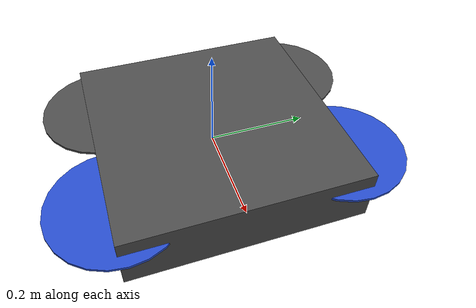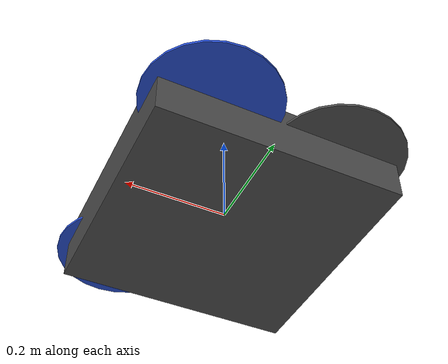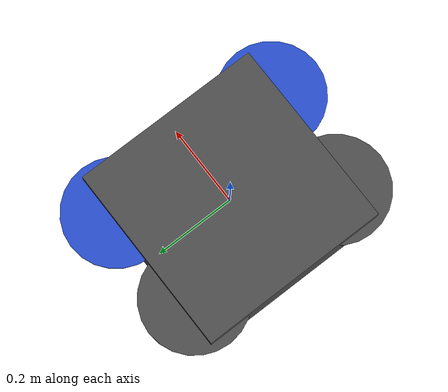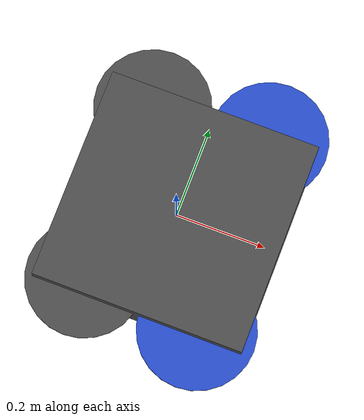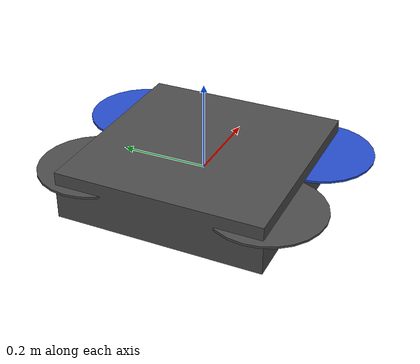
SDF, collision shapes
<sdf version='1.6'>
  <model name='iris'>
    <link name='base_link'>
      <pose frame=''>0 0 0 0 -0 0</pose>
      <inertial>
        <pose frame=''>0 0 0 0 -0 0</pose>
        <mass>1.5</mass>
        <inertia>
          <ixx>0.029125</ixx>
          <ixy>0</ixy>
          <ixz>0</ixz>
          <iyy>0.029125</iyy>
          <iyz>0</iyz>
          <izz>0.055225</izz>
        </inertia>
      </inertial>
      <collision name='base_link_inertia_collision'>
        <pose frame=''>0 0 0 0 -0 0</pose>
        <geometry>
          <box>
            <size>0.47 0.47 0.11</size>
          </box>
        </geometry>
        <surface>
          <contact>
            <ode>
              <min_depth>0.001</min_depth>
              <max_vel>0</max_vel>
            </ode>
          </contact>
          <friction>
            <ode/>
          </friction>
        </surface>
      </collision>
      <visual name='base_link_inertia_visual'>
        <pose frame=''>0 0 0 0 -0 0</pose>
        <geometry>
          <mesh>
            <scale>1 1 1</scale>
            <uri>model://rotors_description/meshes/iris.stl</uri>
          </mesh>
        </geometry>
        <material>
          <script>
            <name>Gazebo/DarkGrey</name>
            <uri>file://media/materials/scripts/gazebo.material</uri>
          </script>
        </material>
      </visual>
      <gravity>1</gravity>
      <velocity_decay/>
    </link>
    <link name='/imu_link'>
      <pose frame=''>0 0 0 0 -0 0</pose>
      <inertial>
        <pose frame=''>0 0 0 0 -0 0</pose>
        <mass>0.015</mass>
        <inertia>
          <ixx>1e-05</ixx>
          <ixy>0</ixy>
          <ixz>0</ixz>
          <iyy>1e-05</iyy>
          <iyz>0</iyz>
          <izz>1e-05</izz>
        </inertia>
      </inertial>
    </link>
    <joint name='/imu_joint' type='revolute'>
      <child>/imu_link</child>
      <parent>base_link</parent>
      <axis>
        <xyz>1 0 0</xyz>
        <limit>
          <lower>0</lower>
          <upper>0</upper>
          <effort>0</effort>
          <velocity>0</velocity>
        </limit>
        <dynamics>
          <spring_reference>0</spring_reference>
          <spring_stiffness>0</spring_stiffness>
        </dynamics>
        <use_parent_model_frame>1</use_parent_model_frame>
      </axis>
    </joint>
    <link name='rotor_0'>
      <pose frame=''>0.13 -0.22 0.023 0 -0 0</pose>
      <inertial>
        <pose frame=''>0 0 0 0 -0 0</pose>
        <mass>0.005</mass>
        <inertia>
          <ixx>9.75e-07</ixx>
          <ixy>0</ixy>
          <ixz>0</ixz>
          <iyy>0.000273104</iyy>
          <iyz>0</iyz>
          <izz>0.000274004</izz>
        </inertia>
      </inertial>
      <collision name='rotor_0_collision'>
        <pose frame=''>0 0 0 0 -0 0</pose>
        <geometry>
          <cylinder>
            <length>0.005</length>
            <radius>0.128</radius>
          </cylinder>
        </geometry>
        <surface>
          <contact>
            <ode/>
          </contact>
          <friction>
            <ode/>
          </friction>
        </surface>
      </collision>
      <visual name='rotor_0_visual'>
        <pose frame=''>0 0 0 0 -0 0</pose>
        <geometry>
          <mesh>
            <scale>1 1 1</scale>
            <uri>model://rotors_description/meshes/iris_prop_ccw.dae</uri>
          </mesh>
        </geometry>
        <material>
          <script>
            <name>Gazebo/Blue</name>
            <uri>file://media/materials/scripts/gazebo.material</uri>
          </script>
        </material>
      </visual>
      <gravity>1</gravity>
      <velocity_decay/>
    </link>
    <joint name='rotor_0_joint' type='revolute'>
      <child>rotor_0</child>
      <parent>base_link</parent>
      <axis>
        <xyz>0 0 1</xyz>
        <limit>
          <lower>-1e+16</lower>
          <upper>1e+16</upper>
        </limit>
        <dynamics>
          <spring_reference>0</spring_reference>
          <spring_stiffness>0</spring_stiffness>
        </dynamics>
        <use_parent_model_frame>1</use_parent_model_frame>
      </axis>
    </joint>
    <link name='rotor_1'>
      <pose frame=''>-0.13 0.2 0.023 0 -0 0</pose>
      <inertial>
        <pose frame=''>0 0 0 0 -0 0</pose>
        <mass>0.005</mass>
        <inertia>
          <ixx>9.75e-07</ixx>
          <ixy>0</ixy>
          <ixz>0</ixz>
          <iyy>0.000273104</iyy>
          <iyz>0</iyz>
          <izz>0.000274004</izz>
        </inertia>
      </inertial>
      <collision name='rotor_1_collision'>
        <pose frame=''>0 0 0 0 -0 0</pose>
        <geometry>
          <cylinder>
            <length>0.005</length>
            <radius>0.128</radius>
          </cylinder>
        </geometry>
        <surface>
          <contact>
            <ode/>
          </contact>
          <friction>
            <ode/>
          </friction>
        </surface>
      </collision>
      <visual name='rotor_1_visual'>
        <pose frame=''>0 0 0 0 -0 0</pose>
        <geometry>
          <mesh>
            <scale>1 1 1</scale>
            <uri>model://rotors_description/meshes/iris_prop_ccw.dae</uri>
          </mesh>
        </geometry>
        <material>
          <script>
            <name>Gazebo/DarkGrey</name>
            <uri>file://media/materials/scripts/gazebo.material</uri>
          </script>
        </material>
      </visual>
      <gravity>1</gravity>
      <velocity_decay/>
    </link>
    <joint name='rotor_1_joint' type='revolute'>
      <child>rotor_1</child>
      <parent>base_link</parent>
      <axis>
        <xyz>0 0 1</xyz>
        <limit>
          <lower>-1e+16</lower>
          <upper>1e+16</upper>
        </limit>
        <dynamics>
          <spring_reference>0</spring_reference>
          <spring_stiffness>0</spring_stiffness>
        </dynamics>
        <use_parent_model_frame>1</use_parent_model_frame>
      </axis>
    </joint>
    <link name='rotor_2'>
      <pose frame=''>0.13 0.22 0.023 0 -0 0</pose>
      <inertial>
        <pose frame=''>0 0 0 0 -0 0</pose>
        <mass>0.005</mass>
        <inertia>
          <ixx>9.75e-07</ixx>
          <ixy>0</ixy>
          <ixz>0</ixz>
          <iyy>0.000273104</iyy>
          <iyz>0</iyz>
          <izz>0.000274004</izz>
        </inertia>
      </inertial>
      <collision name='rotor_2_collision'>
        <pose frame=''>0 0 0 0 -0 0</pose>
        <geometry>
          <cylinder>
            <length>0.005</length>
            <radius>0.128</radius>
          </cylinder>
        </geometry>
        <surface>
          <contact>
            <ode/>
          </contact>
          <friction>
            <ode/>
          </friction>
        </surface>
      </collision>
      <visual name='rotor_2_visual'>
        <pose frame=''>0 0 0 0 -0 0</pose>
        <geometry>
          <mesh>
            <scale>1 1 1</scale>
            <uri>model://rotors_description/meshes/iris_prop_cw.dae</uri>
          </mesh>
        </geometry>
        <material>
          <script>
            <name>Gazebo/Blue</name>
            <uri>file://media/materials/scripts/gazebo.material</uri>
          </script>
        </material>
      </visual>
      <gravity>1</gravity>
      <velocity_decay/>
    </link>
    <joint name='rotor_2_joint' type='revolute'>
      <child>rotor_2</child>
      <parent>base_link</parent>
      <axis>
        <xyz>0 0 1</xyz>
        <limit>
          <lower>-1e+16</lower>
          <upper>1e+16</upper>
        </limit>
        <dynamics>
          <spring_reference>0</spring_reference>
          <spring_stiffness>0</spring_stiffness>
        </dynamics>
        <use_parent_model_frame>1</use_parent_model_frame>
      </axis>
    </joint>
    <link name='rotor_3'>
      <pose frame=''>-0.13 -0.2 0.023 0 -0 0</pose>
      <inertial>
        <pose frame=''>0 0 0 0 -0 0</pose>
        <mass>0.005</mass>
        <inertia>
          <ixx>9.75e-07</ixx>
          <ixy>0</ixy>
          <ixz>0</ixz>
          <iyy>0.000273104</iyy>
          <iyz>0</iyz>
          <izz>0.000274004</izz>
        </inertia>
      </inertial>
      <collision name='rotor_3_collision'>
        <pose frame=''>0 0 0 0 -0 0</pose>
        <geometry>
          <cylinder>
            <length>0.005</length>
            <radius>0.128</radius>
          </cylinder>
        </geometry>
        <surface>
          <contact>
            <ode/>
          </contact>
          <friction>
            <ode/>
          </friction>
        </surface>
      </collision>
      <visual name='rotor_3_visual'>
        <pose frame=''>0 0 0 0 -0 0</pose>
        <geometry>
          <mesh>
            <scale>1 1 1</scale>
            <uri>model://rotors_description/meshes/iris_prop_cw.dae</uri>
          </mesh>
        </geometry>
        <material>
          <script>
            <name>Gazebo/DarkGrey</name>
            <uri>file://media/materials/scripts/gazebo.material</uri>
          </script>
        </material>
      </visual>
      <gravity>1</gravity>
      <velocity_decay/>
    </link>
    <joint name='rotor_3_joint' type='revolute'>
      <child>rotor_3</child>
      <parent>base_link</parent>
      <axis>
        <xyz>0 0 1</xyz>
        <limit>
          <lower>-1e+16</lower>
          <upper>1e+16</upper>
        </limit>
        <dynamics>
          <spring_reference>0</spring_reference>
          <spring_stiffness>0</spring_stiffness>
        </dynamics>
        <use_parent_model_frame>1</use_parent_model_frame>
      </axis>
    </joint>
    <plugin name='rosbag' filename='libgazebo_multirotor_base_plugin.so'>
      <robotNamespace/>
      <linkName>base_link</linkName>
      <rotorVelocitySlowdownSim>10</rotorVelocitySlowdownSim>
    </plugin>
    <plugin name='front_right_motor_model' filename='libgazebo_motor_model.so'>
      <robotNamespace/>
      <jointName>rotor_0_joint</jointName>
      <linkName>rotor_0</linkName>
      <turningDirection>ccw</turningDirection>
      <timeConstantUp>0.0125</timeConstantUp>
      <timeConstantDown>0.025</timeConstantDown>
      <maxRotVelocity>1100</maxRotVelocity>
      <motorConstant>8.54858e-06</motorConstant>
      <momentConstant>0.06</momentConstant>
      <commandSubTopic>/gazebo/command/motor_speed</commandSubTopic>
      <motorNumber>0</motorNumber>
      <rotorDragCoefficient>0.000806428</rotorDragCoefficient>
      <rollingMomentCoefficient>1e-06</rollingMomentCoefficient>
      <motorSpeedPubTopic>/motor_speed/0</motorSpeedPubTopic>
      <rotorVelocitySlowdownSim>10</rotorVelocitySlowdownSim>
    </plugin>
    <plugin name='back_left_motor_model' filename='libgazebo_motor_model.so'>
      <robotNamespace/>
      <jointName>rotor_1_joint</jointName>
      <linkName>rotor_1</linkName>
      <turningDirection>ccw</turningDirection>
      <timeConstantUp>0.0125</timeConstantUp>
      <timeConstantDown>0.025</timeConstantDown>
      <maxRotVelocity>1100</maxRotVelocity>
      <motorConstant>8.54858e-06</motorConstant>
      <momentConstant>0.06</momentConstant>
      <commandSubTopic>/gazebo/command/motor_speed</commandSubTopic>
      <motorNumber>1</motorNumber>
      <rotorDragCoefficient>0.000806428</rotorDragCoefficient>
      <rollingMomentCoefficient>1e-06</rollingMomentCoefficient>
      <motorSpeedPubTopic>/motor_speed/1</motorSpeedPubTopic>
      <rotorVelocitySlowdownSim>10</rotorVelocitySlowdownSim>
    </plugin>
    <plugin name='front_left_motor_model' filename='libgazebo_motor_model.so'>
      <robotNamespace/>
      <jointName>rotor_2_joint</jointName>
      <linkName>rotor_2</linkName>
      <turningDirection>cw</turningDirection>
      <timeConstantUp>0.0125</timeConstantUp>
      <timeConstantDown>0.025</timeConstantDown>
      <maxRotVelocity>1100</maxRotVelocity>
      <motorConstant>8.54858e-06</motorConstant>
      <momentConstant>0.06</momentConstant>
      <commandSubTopic>/gazebo/command/motor_speed</commandSubTopic>
      <motorNumber>2</motorNumber>
      <rotorDragCoefficient>0.000806428</rotorDragCoefficient>
      <rollingMomentCoefficient>1e-06</rollingMomentCoefficient>
      <motorSpeedPubTopic>/motor_speed/2</motorSpeedPubTopic>
      <rotorVelocitySlowdownSim>10</rotorVelocitySlowdownSim>
    </plugin>
    <plugin name='back_right_motor_model' filename='libgazebo_motor_model.so'>
      <robotNamespace/>
      <jointName>rotor_3_joint</jointName>
      <linkName>rotor_3</linkName>
      <turningDirection>cw</turningDirection>
      <timeConstantUp>0.0125</timeConstantUp>
      <timeConstantDown>0.025</timeConstantDown>
      <maxRotVelocity>1100</maxRotVelocity>
      <motorConstant>8.54858e-06</motorConstant>
      <momentConstant>0.06</momentConstant>
      <commandSubTopic>/gazebo/command/motor_speed</commandSubTopic>
      <motorNumber>3</motorNumber>
      <rotorDragCoefficient>0.000806428</rotorDragCoefficient>
      <rollingMomentCoefficient>1e-06</rollingMomentCoefficient>
      <motorSpeedPubTopic>/motor_speed/3</motorSpeedPubTopic>
      <rotorVelocitySlowdownSim>10</rotorVelocitySlowdownSim>
    </plugin>
    <plugin name='gps_plugin' filename='libgazebo_gps_plugin.so'>
      <robotNamespace/>
      <gpsNoise>0</gpsNoise>
    </plugin>
    <plugin name='magnetometer_plugin' filename='libgazebo_magnetometer_plugin.so'>
      <robotNamespace/>
      <pubRate>20</pubRate>
      <noiseDensity>0.0004</noiseDensity>
      <randomWalk>6.4e-06</randomWalk>
      <biasCorrelationTime>600</biasCorrelationTime>
      <magTopic>/mag</magTopic>
    </plugin>
    <plugin name='barometer_plugin' filename='libgazebo_barometer_plugin.so'>
      <robotNamespace/>
      <pubRate>10</pubRate>
      <baroTopic>/baro</baroTopic>
    </plugin>
    <plugin name='mavlink_interface' filename='libgazebo_mavlink_interface.so'>
      <robotNamespace/>
      <imuSubTopic>/imu</imuSubTopic>
      <gpsSubTopic>/gps</gpsSubTopic>
      <magSubTopic>/mag</magSubTopic>
      <baroSubTopic>/baro</baroSubTopic>
      <mavlink_addr>INADDR_ANY</mavlink_addr>
      <mavlink_udp_port>14560</mavlink_udp_port>
      <mavlink_tcp_port>4560</mavlink_tcp_port>
      <serialEnabled>0</serialEnabled>
      <serialDevice>/dev/ttyACM0</serialDevice>
      <baudRate>921600</baudRate>
      <qgc_addr>INADDR_ANY</qgc_addr>
      <qgc_udp_port>14550</qgc_udp_port>
      <sdk_addr>INADDR_ANY</sdk_addr>
      <sdk_udp_port>14540</sdk_udp_port>
      <hil_mode>0</hil_mode>
      <hil_state_level>0</hil_state_level>
      <vehicle_is_tailsitter>0</vehicle_is_tailsitter>
      <send_vision_estimation>0</send_vision_estimation>
      <send_odometry>1</send_odometry>
      <enable_lockstep>1</enable_lockstep>
      <use_tcp>1</use_tcp>
      <motorSpeedCommandPubTopic>/gazebo/command/motor_speed</motorSpeedCommandPubTopic>
      <control_channels>
        <channel name='rotor1'>
          <input_index>0</input_index>
          <input_offset>0</input_offset>
          <input_scaling>1000</input_scaling>
          <zero_position_disarmed>0</zero_position_disarmed>
          <zero_position_armed>100</zero_position_armed>
          <joint_control_type>velocity</joint_control_type>
        </channel>
        <channel name='rotor2'>
          <input_index>1</input_index>
          <input_offset>0</input_offset>
          <input_scaling>1000</input_scaling>
          <zero_position_disarmed>0</zero_position_disarmed>
          <zero_position_armed>100</zero_position_armed>
          <joint_control_type>velocity</joint_control_type>
        </channel>
        <channel name='rotor3'>
          <input_index>2</input_index>
          <input_offset>0</input_offset>
          <input_scaling>1000</input_scaling>
          <zero_position_disarmed>0</zero_position_disarmed>
          <zero_position_armed>100</zero_position_armed>
          <joint_control_type>velocity</joint_control_type>
        </channel>
        <channel name='rotor4'>
          <input_index>3</input_index>
          <input_offset>0</input_offset>
          <input_scaling>1000</input_scaling>
          <zero_position_disarmed>0</zero_position_disarmed>
          <zero_position_armed>100</zero_position_armed>
          <joint_control_type>velocity</joint_control_type>
        </channel>
        <channel name='rotor5'>
          <input_index>4</input_index>
          <input_offset>1</input_offset>
          <input_scaling>324.6</input_scaling>
          <zero_position_disarmed>0</zero_position_disarmed>
          <zero_position_armed>0</zero_position_armed>
          <joint_control_type>velocity</joint_control_type>
          <joint_control_pid>
            <p>0.1</p>
            <i>0</i>
            <d>0</d>
            <iMax>0.0</iMax>
            <iMin>0.0</iMin>
            <cmdMax>2</cmdMax>
            <cmdMin>-2</cmdMin>
          </joint_control_pid>
          <joint_name>zephyr_delta_wing::propeller_joint</joint_name>
        </channel>
        <channel name='rotor6'>
          <input_index>5</input_index>
          <input_offset>0</input_offset>
          <input_scaling>0.524</input_scaling>
          <zero_position_disarmed>0</zero_position_disarmed>
          <zero_position_armed>0</zero_position_armed>
          <joint_control_type>position</joint_control_type>
          <joint_name>zephyr_delta_wing::flap_left_joint</joint_name>
          <joint_control_pid>
            <p>10.0</p>
            <i>0</i>
            <d>0</d>
            <iMax>0</iMax>
            <iMin>0</iMin>
            <cmdMax>20</cmdMax>
            <cmdMin>-20</cmdMin>
          </joint_control_pid>
        </channel>
        <channel name='rotor7'>
          <input_index>6</input_index>
          <input_offset>0</input_offset>
          <input_scaling>0.524</input_scaling>
          <zero_position_disarmed>0</zero_position_disarmed>
          <zero_position_armed>0</zero_position_armed>
          <joint_control_type>position</joint_control_type>
          <joint_name>zephyr_delta_wing::flap_right_joint</joint_name>
          <joint_control_pid>
            <p>10.0</p>
            <i>0</i>
            <d>0</d>
            <iMax>0</iMax>
            <iMin>0</iMin>
            <cmdMax>20</cmdMax>
            <cmdMin>-20</cmdMin>
          </joint_control_pid>
        </channel>
        <channel name='rotor8'>
          <input_index>7</input_index>
          <input_offset>0</input_offset>
          <input_scaling>0.524</input_scaling>
          <zero_position_disarmed>0</zero_position_disarmed>
          <zero_position_armed>0</zero_position_armed>
          <joint_control_type>position</joint_control_type>
        </channel>
      </control_channels>
    </plugin>
    <static>0</static>
    <plugin name='rotors_gazebo_imu_plugin' filename='libgazebo_imu_plugin.so'>
      <robotNamespace/>
      <linkName>/imu_link</linkName>
      <imuTopic>/imu</imuTopic>
      <gyroscopeNoiseDensity>0.0003394</gyroscopeNoiseDensity>
      <gyroscopeRandomWalk>3.8785e-05</gyroscopeRandomWalk>
      <gyroscopeBiasCorrelationTime>1000.0</gyroscopeBiasCorrelationTime>
      <gyroscopeTurnOnBiasSigma>0.0087</gyroscopeTurnOnBiasSigma>
      <accelerometerNoiseDensity>0.004</accelerometerNoiseDensity>
      <accelerometerRandomWalk>0.006</accelerometerRandomWalk>
      <accelerometerBiasCorrelationTime>300.0</accelerometerBiasCorrelationTime>
      <accelerometerTurnOnBiasSigma>0.196</accelerometerTurnOnBiasSigma>
    </plugin>
  <!-- added -->

	<include>
	  <uri>model://depth_camera_new</uri>
	  <pose>0.1 0 0 0 0 0</pose>
	</include>
	<joint name="depth_camera_new_joint" type="fixed">
	  <child>depth_camera_new::link</child>
	  <parent>base_link</parent>
	  <axis>
	    <xyz>0 0 1</xyz>
	    <limit>
	      <upper>0</upper>
	      <lower>0</lower>
	    </limit>
	  </axis>
	</joint>

  <!-- added -->

  <!-- added -->

  <!-- plugins: libgazebo_ros_p3d -->
  <!-- 发布真值,模拟vicon系统 -->
  <plugin name='p3d_base_controller' filename='libgazebo_ros_p3d.so'>
    <alwaysOn>true</alwaysOn>
    <updateRate>50.0</updateRate>
    <bodyName>base_link</bodyName>
    <topicName>ground_truth/state</topicName>
    <gaussianNoise>0.00</gaussianNoise>
    <frameName>world</frameName>
    <xyzOffsets>0 0 0</xyzOffsets>
    <rpyOffsets>0 0 0</rpyOffsets>
  </plugin>

  <!-- added -->

  </model>
</sdf>

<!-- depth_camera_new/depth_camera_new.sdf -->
<sdf version="1.5">
  <model name="depth_camera_new">
    <pose>0 0 0.035 0 0 0</pose>
    <link name="link">
      <inertial>
        <pose>0.01 0.025 0.025 0 0 0</pose>
        <mass>0.01</mass>
        <inertia>
          <ixx>4.15e-6</ixx>
          <ixy>0</ixy>
          <ixz>0</ixz>
          <iyy>2.407e-6</iyy>
          <iyz>0</iyz>
          <izz>2.407e-6</izz>
        </inertia>
      </inertial>
      <visual name="visual">
        <pose>0 0 0 0 1.57 0</pose>
        <geometry>
          <mesh>
            <uri>model://depth_camera_new/meshes/hokuyo.dae</uri>
          </mesh>
        </geometry>
      </visual>
        <collision name='collision'>
          <geometry>
            <box>
              <size>0.06 0.06 0.06</size>
            </box>
          </geometry>
          <max_contacts>10</max_contacts>
          <surface>
            <contact>
              <ode/>
            </contact>
            <bounce/>
            <friction>
              <torsional>
                <ode/>
              </torsional>
              <ode/>
            </friction>
          </surface>
        </collision>

      <sensor name="depth_camera" type="depth">
        <update_rate>20</update_rate>
        <camera>
          <horizontal_fov>1.047198</horizontal_fov>
          <image>
            <format>R8G8B8</format>
            <width>640</width>
            <height>480</height>
          </image>
          <clip>
            <near>0.1</near>
            <far>10</far>
          </clip>
        </camera>
        <plugin filename="libgazebo_ros_openni_kinect.so" name="camera_controller">
	        <robotNamespace></robotNamespace>
          <baseline>0.2</baseline>
          <cameraName>depth_camera</cameraName>
          <alwaysOn>true</alwaysOn>
          <updateRate>20</updateRate>
          <pointCloudCutoff>0.05</pointCloudCutoff>
          <imageTopicName>rgb/image_raw</imageTopicName>
          <cameraInfoTopicName>rgb/camera_info</cameraInfoTopicName>
          <depthImageTopicName>depth/image_raw</depthImageTopicName>
          <depthImageCameraInfoTopicName>depth/camera_info</depthImageCameraInfoTopicName>
          <pointCloudTopicName>depth/points</pointCloudTopicName>
          <frameName>depth_camera_link</frameName>
          <distortion_k1>0.0</distortion_k1>
          <distortion_k2>0.0</distortion_k2>
          <distortion_k3>0.0</distortion_k3>
          <distortion_t1>0.0</distortion_t1>
          <distortion_t2>0.0</distortion_t2>
          <CxPrime>0</CxPrime>
          <Cx>0</Cx>
          <Cy>0</Cy>
          <focalLength>0</focalLength>
          <hackBaseline>0</hackBaseline>
        </plugin>
      </sensor>
     </link>
  </model>
</sdf>
